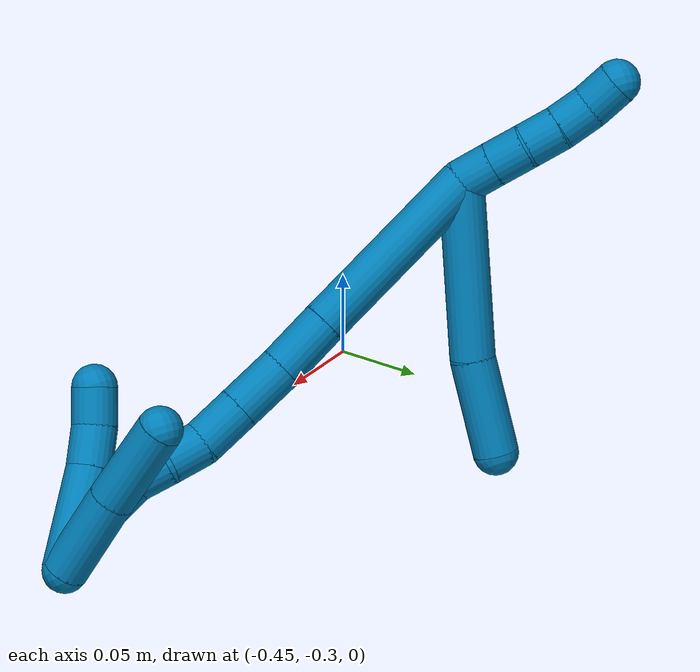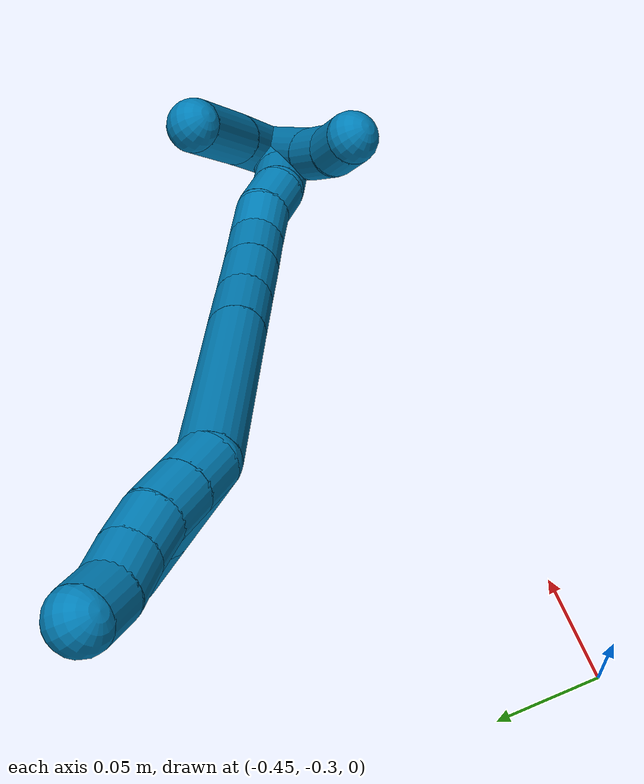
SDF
<sdf version="1.7">
 <world name="default">
  <model name="9">
   <static>0</static>
   <link name="9">
    <collision name="collision-cylinder-e_1_2_8">
     <pose>-0.005235 -0.017994 -0.044416 2.75669 -0.108809 -0.545027</pose>
     <geometry><cylinder><radius>0.0125</radius><length>0.096416</length></cylinder></geometry>
     <surface>
      <friction><ode><mu>1.16</mu><mu2>1.16</mu2><slip1>0</slip1><slip2>0</slip2></ode></friction>
      <contact><ode><kp>1e+06</kp><kd>1</kd><max_vel>0</max_vel><min_depth>0.001</min_depth></ode></contact>
     </surface>
    </collision>
    <visual name="visual-cylinder-e_1_2_8">
     <pose>-0.005235 -0.017994 -0.044416 2.75669 -0.108809 -0.545027</pose>
     <geometry><cylinder><radius>0.0125</radius><length>0.096416</length></cylinder></geometry>
     <material><ambient>0 0.490196 0.709804 1</ambient></material>
    </visual>
    <collision name="collision-cylinder-e_2_8_6">
     <pose>-0.016002 -0.042215 -0.114297 2.90174 -0.20795 -1.42735</pose>
     <geometry><cylinder><radius>0.0125</radius><length>0.053584</length></cylinder></geometry>
     <surface>
      <friction><ode><mu>1.16</mu><mu2>1.16</mu2><slip1>0</slip1><slip2>0</slip2></ode></friction>
      <contact><ode><kp>1e+06</kp><kd>1</kd><max_vel>0</max_vel><min_depth>0.001</min_depth></ode></contact>
     </surface>
    </collision>
    <visual name="visual-cylinder-e_2_8_6">
     <pose>-0.016002 -0.042215 -0.114297 2.90174 -0.20795 -1.42735</pose>
     <geometry><cylinder><radius>0.0125</radius><length>0.053584</length></cylinder></geometry>
     <material><ambient>0 0.490196 0.709804 1</ambient></material>
    </visual>
    <collision name="collision-cylinder-e_1_2_9">
     <pose>-0.004003 0.009009 0.001678 -1.38668 -0.411853 0.343733</pose>
     <geometry><cylinder><radius>0.0125</radius><length>0.02</length></cylinder></geometry>
     <surface>
      <friction><ode><mu>1.16</mu><mu2>1.16</mu2><slip1>0</slip1><slip2>0</slip2></ode></friction>
      <contact><ode><kp>1e+06</kp><kd>1</kd><max_vel>0</max_vel><min_depth>0.001</min_depth></ode></contact>
     </surface>
    </collision>
    <visual name="visual-cylinder-e_1_2_9">
     <pose>-0.004003 0.009009 0.001678 -1.38668 -0.411853 0.343733</pose>
     <geometry><cylinder><radius>0.0125</radius><length>0.02</length></cylinder></geometry>
     <material><ambient>0 0.490196 0.709804 1</ambient></material>
    </visual>
    <collision name="collision-cylinder-e_2_9_10">
     <pose>-0.012019 0.027043 0.004922 -1.39893 -0.412893 0.348836</pose>
     <geometry><cylinder><radius>0.0125</radius><length>0.02</length></cylinder></geometry>
     <surface>
      <friction><ode><mu>1.16</mu><mu2>1.16</mu2><slip1>0</slip1><slip2>0</slip2></ode></friction>
      <contact><ode><kp>1e+06</kp><kd>1</kd><max_vel>0</max_vel><min_depth>0.001</min_depth></ode></contact>
     </surface>
    </collision>
    <visual name="visual-cylinder-e_2_9_10">
     <pose>-0.012019 0.027043 0.004922 -1.39893 -0.412893 0.348836</pose>
     <geometry><cylinder><radius>0.0125</radius><length>0.02</length></cylinder></geometry>
     <material><ambient>0 0.490196 0.709804 1</ambient></material>
    </visual>
    <collision name="collision-cylinder-e_3_10_11">
     <pose>-0.021234 0.044406 0.008331 -1.35334 -0.547216 0.443402</pose>
     <geometry><cylinder><radius>0.0125</radius><length>0.02</length></cylinder></geometry>
     <surface>
      <friction><ode><mu>1.16</mu><mu2>1.16</mu2><slip1>0</slip1><slip2>0</slip2></ode></friction>
      <contact><ode><kp>1e+06</kp><kd>1</kd><max_vel>0</max_vel><min_depth>0.001</min_depth></ode></contact>
     </surface>
    </collision>
    <visual name="visual-cylinder-e_3_10_11">
     <pose>-0.021234 0.044406 0.008331 -1.35334 -0.547216 0.443402</pose>
     <geometry><cylinder><radius>0.0125</radius><length>0.02</length></cylinder></geometry>
     <material><ambient>0 0.490196 0.709804 1</ambient></material>
    </visual>
    <collision name="collision-cylinder-e_4_11_12">
     <pose>-0.031662 0.060773 0.013045 -1.22729 -0.54968 0.392122</pose>
     <geometry><cylinder><radius>0.0125</radius><length>0.02</length></cylinder></geometry>
     <surface>
      <friction><ode><mu>1.16</mu><mu2>1.16</mu2><slip1>0</slip1><slip2>0</slip2></ode></friction>
      <contact><ode><kp>1e+06</kp><kd>1</kd><max_vel>0</max_vel><min_depth>0.001</min_depth></ode></contact>
     </surface>
    </collision>
    <visual name="visual-cylinder-e_4_11_12">
     <pose>-0.031662 0.060773 0.013045 -1.22729 -0.54968 0.392122</pose>
     <geometry><cylinder><radius>0.0125</radius><length>0.02</length></cylinder></geometry>
     <material><ambient>0 0.490196 0.709804 1</ambient></material>
    </visual>
    <collision name="collision-cylinder-e_5_12_5">
     <pose>-0.039839 0.077679 0.01945 -1.19197 -0.299733 0.20412</pose>
     <geometry><cylinder><radius>0.0125</radius><length>0.02</length></cylinder></geometry>
     <surface>
      <friction><ode><mu>1.16</mu><mu2>1.16</mu2><slip1>0</slip1><slip2>0</slip2></ode></friction>
      <contact><ode><kp>1e+06</kp><kd>1</kd><max_vel>0</max_vel><min_depth>0.001</min_depth></ode></contact>
     </surface>
    </collision>
    <visual name="visual-cylinder-e_5_12_5">
     <pose>-0.039839 0.077679 0.01945 -1.19197 -0.299733 0.20412</pose>
     <geometry><cylinder><radius>0.0125</radius><length>0.02</length></cylinder></geometry>
     <material><ambient>0 0.490196 0.709804 1</ambient></material>
    </visual>
    <collision name="collision-cylinder-e_1_2_13">
     <pose>0.028412 -0.037039 -0.024764 2.16013 0.567668 0.999438</pose>
     <geometry><cylinder><radius>0.0125</radius><length>0.105686</length></cylinder></geometry>
     <surface>
      <friction><ode><mu>1.16</mu><mu2>1.16</mu2><slip1>0</slip1><slip2>0</slip2></ode></friction>
      <contact><ode><kp>1e+06</kp><kd>1</kd><max_vel>0</max_vel><min_depth>0.001</min_depth></ode></contact>
     </surface>
    </collision>
    <visual name="visual-cylinder-e_1_2_13">
     <pose>0.028412 -0.037039 -0.024764 2.16013 0.567668 0.999438</pose>
     <geometry><cylinder><radius>0.0125</radius><length>0.105686</length></cylinder></geometry>
     <material><ambient>0 0.490196 0.709804 1</ambient></material>
    </visual>
    <collision name="collision-cylinder-e_2_13_14">
     <pose>0.065544 -0.085787 -0.057523 2.1699 0.551427 0.983698</pose>
     <geometry><cylinder><radius>0.0125</radius><length>0.03329</length></cylinder></geometry>
     <surface>
      <friction><ode><mu>1.16</mu><mu2>1.16</mu2><slip1>0</slip1><slip2>0</slip2></ode></friction>
      <contact><ode><kp>1e+06</kp><kd>1</kd><max_vel>0</max_vel><min_depth>0.001</min_depth></ode></contact>
     </surface>
    </collision>
    <visual name="visual-cylinder-e_2_13_14">
     <pose>0.065544 -0.085787 -0.057523 2.1699 0.551427 0.983698</pose>
     <geometry><cylinder><radius>0.0125</radius><length>0.03329</length></cylinder></geometry>
     <material><ambient>0 0.490196 0.709804 1</ambient></material>
    </visual>
    <collision name="collision-cylinder-e_3_14_15">
     <pose>0.083051 -0.10847 -0.072322 2.12584 0.597493 1.01077</pose>
     <geometry><cylinder><radius>0.0125</radius><length>0.031236</length></cylinder></geometry>
     <surface>
      <friction><ode><mu>1.16</mu><mu2>1.16</mu2><slip1>0</slip1><slip2>0</slip2></ode></friction>
      <contact><ode><kp>1e+06</kp><kd>1</kd><max_vel>0</max_vel><min_depth>0.001</min_depth></ode></contact>
     </surface>
    </collision>
    <visual name="visual-cylinder-e_3_14_15">
     <pose>0.083051 -0.10847 -0.072322 2.12584 0.597493 1.01077</pose>
     <geometry><cylinder><radius>0.0125</radius><length>0.031236</length></cylinder></geometry>
     <material><ambient>0 0.490196 0.709804 1</ambient></material>
    </visual>
    <collision name="collision-cylinder-e_4_15_16">
     <pose>0.09966 -0.128888 -0.085038 2.13003 0.612111 1.03696</pose>
     <geometry><cylinder><radius>0.0125</radius><length>0.027228</length></cylinder></geometry>
     <surface>
      <friction><ode><mu>1.16</mu><mu2>1.16</mu2><slip1>0</slip1><slip2>0</slip2></ode></friction>
      <contact><ode><kp>1e+06</kp><kd>1</kd><max_vel>0</max_vel><min_depth>0.001</min_depth></ode></contact>
     </surface>
    </collision>
    <visual name="visual-cylinder-e_4_15_16">
     <pose>0.09966 -0.128888 -0.085038 2.13003 0.612111 1.03696</pose>
     <geometry><cylinder><radius>0.0125</radius><length>0.027228</length></cylinder></geometry>
     <material><ambient>0 0.490196 0.709804 1</ambient></material>
    </visual>
    <collision name="collision-cylinder-e_5_16_17">
     <pose>0.115153 -0.145351 -0.093157 1.87553 0.806298 1.05306</pose>
     <geometry><cylinder><radius>0.0125</radius><length>0.021257</length></cylinder></geometry>
     <surface>
      <friction><ode><mu>1.16</mu><mu2>1.16</mu2><slip1>0</slip1><slip2>0</slip2></ode></friction>
      <contact><ode><kp>1e+06</kp><kd>1</kd><max_vel>0</max_vel><min_depth>0.001</min_depth></ode></contact>
     </surface>
    </collision>
    <visual name="visual-cylinder-e_5_16_17">
     <pose>0.115153 -0.145351 -0.093157 1.87553 0.806298 1.05306</pose>
     <geometry><cylinder><radius>0.0125</radius><length>0.021257</length></cylinder></geometry>
     <material><ambient>0 0.490196 0.709804 1</ambient></material>
    </visual>
    <collision name="collision-cylinder-e_6_17_18">
     <pose>0.128343 -0.160813 -0.097077 1.77092 0.569688 0.687855</pose>
     <geometry><cylinder><radius>0.0125</radius><length>0.020465</length></cylinder></geometry>
     <surface>
      <friction><ode><mu>1.16</mu><mu2>1.16</mu2><slip1>0</slip1><slip2>0</slip2></ode></friction>
      <contact><ode><kp>1e+06</kp><kd>1</kd><max_vel>0</max_vel><min_depth>0.001</min_depth></ode></contact>
     </surface>
    </collision>
    <visual name="visual-cylinder-e_6_17_18">
     <pose>0.128343 -0.160813 -0.097077 1.77092 0.569688 0.687855</pose>
     <geometry><cylinder><radius>0.0125</radius><length>0.020465</length></cylinder></geometry>
     <material><ambient>0 0.490196 0.709804 1</ambient></material>
    </visual>
    <collision name="collision-cylinder-e_7_18_19">
     <pose>0.139228 -0.176369 -0.103365 2.14251 0.565417 0.978329</pose>
     <geometry><cylinder><radius>0.0125</radius><length>0.02003</length></cylinder></geometry>
     <surface>
      <friction><ode><mu>1.16</mu><mu2>1.16</mu2><slip1>0</slip1><slip2>0</slip2></ode></friction>
      <contact><ode><kp>1e+06</kp><kd>1</kd><max_vel>0</max_vel><min_depth>0.001</min_depth></ode></contact>
     </surface>
    </collision>
    <visual name="visual-cylinder-e_7_18_19">
     <pose>0.139228 -0.176369 -0.103365 2.14251 0.565417 0.978329</pose>
     <geometry><cylinder><radius>0.0125</radius><length>0.02003</length></cylinder></geometry>
     <material><ambient>0 0.490196 0.709804 1</ambient></material>
    </visual>
    <collision name="collision-cylinder-e_8_19_20">
     <pose>0.150825 -0.189465 -0.113643 2.33203 0.645961 1.32635</pose>
     <geometry><cylinder><radius>0.0125</radius><length>0.020703</length></cylinder></geometry>
     <surface>
      <friction><ode><mu>1.16</mu><mu2>1.16</mu2><slip1>0</slip1><slip2>0</slip2></ode></friction>
      <contact><ode><kp>1e+06</kp><kd>1</kd><max_vel>0</max_vel><min_depth>0.001</min_depth></ode></contact>
     </surface>
    </collision>
    <visual name="visual-cylinder-e_8_19_20">
     <pose>0.150825 -0.189465 -0.113643 2.33203 0.645961 1.32635</pose>
     <geometry><cylinder><radius>0.0125</radius><length>0.020703</length></cylinder></geometry>
     <material><ambient>0 0.490196 0.709804 1</ambient></material>
    </visual>
    <collision name="collision-cylinder-e_9_20_1">
     <pose>0.162216 -0.200189 -0.126553 2.55992 0.538989 1.49054</pose>
     <geometry><cylinder><radius>0.0125</radius><length>0.020105</length></cylinder></geometry>
     <surface>
      <friction><ode><mu>1.16</mu><mu2>1.16</mu2><slip1>0</slip1><slip2>0</slip2></ode></friction>
      <contact><ode><kp>1e+06</kp><kd>1</kd><max_vel>0</max_vel><min_depth>0.001</min_depth></ode></contact>
     </surface>
    </collision>
    <visual name="visual-cylinder-e_9_20_1">
     <pose>0.162216 -0.200189 -0.126553 2.55992 0.538989 1.49054</pose>
     <geometry><cylinder><radius>0.0125</radius><length>0.020105</length></cylinder></geometry>
     <material><ambient>0 0.490196 0.709804 1</ambient></material>
    </visual>
    <collision name="collision-cylinder-e_1_1_21">
     <pose>0.166222 -0.183499 -0.120802 -1.02689 -0.04603 0.025959</pose>
     <geometry><cylinder><radius>0.0125</radius><length>0.050141</length></cylinder></geometry>
     <surface>
      <friction><ode><mu>1.16</mu><mu2>1.16</mu2><slip1>0</slip1><slip2>0</slip2></ode></friction>
      <contact><ode><kp>1e+06</kp><kd>1</kd><max_vel>0</max_vel><min_depth>0.001</min_depth></ode></contact>
     </surface>
    </collision>
    <visual name="visual-cylinder-e_1_1_21">
     <pose>0.166222 -0.183499 -0.120802 -1.02689 -0.04603 0.025959</pose>
     <geometry><cylinder><radius>0.0125</radius><length>0.050141</length></cylinder></geometry>
     <material><ambient>0 0.490196 0.709804 1</ambient></material>
    </visual>
    <collision name="collision-cylinder-e_2_21_4">
     <pose>0.1641 -0.140324 -0.095689 -1.06116 -0.038867 0.022805</pose>
     <geometry><cylinder><radius>0.0125</radius><length>0.049859</length></cylinder></geometry>
     <surface>
      <friction><ode><mu>1.16</mu><mu2>1.16</mu2><slip1>0</slip1><slip2>0</slip2></ode></friction>
      <contact><ode><kp>1e+06</kp><kd>1</kd><max_vel>0</max_vel><min_depth>0.001</min_depth></ode></contact>
     </surface>
    </collision>
    <visual name="visual-cylinder-e_2_21_4">
     <pose>0.1641 -0.140324 -0.095689 -1.06116 -0.038867 0.022805</pose>
     <geometry><cylinder><radius>0.0125</radius><length>0.049859</length></cylinder></geometry>
     <material><ambient>0 0.490196 0.709804 1</ambient></material>
    </visual>
    <collision name="collision-cylinder-e_1_1_22">
     <pose>0.156492 -0.195567 -0.109756 -0.371858 -0.399648 0.076154</pose>
     <geometry><cylinder><radius>0.0125</radius><length>0.055942</length></cylinder></geometry>
     <surface>
      <friction><ode><mu>1.16</mu><mu2>1.16</mu2><slip1>0</slip1><slip2>0</slip2></ode></friction>
      <contact><ode><kp>1e+06</kp><kd>1</kd><max_vel>0</max_vel><min_depth>0.001</min_depth></ode></contact>
     </surface>
    </collision>
    <visual name="visual-cylinder-e_1_1_22">
     <pose>0.156492 -0.195567 -0.109756 -0.371858 -0.399648 0.076154</pose>
     <geometry><cylinder><radius>0.0125</radius><length>0.055942</length></cylinder></geometry>
     <material><ambient>0 0.490196 0.709804 1</ambient></material>
    </visual>
    <collision name="collision-cylinder-e_2_22_23">
     <pose>0.142038 -0.182841 -0.075241 -0.309808 -0.312966 0.049264</pose>
     <geometry><cylinder><radius>0.0125</radius><length>0.023195</length></cylinder></geometry>
     <surface>
      <friction><ode><mu>1.16</mu><mu2>1.16</mu2><slip1>0</slip1><slip2>0</slip2></ode></friction>
      <contact><ode><kp>1e+06</kp><kd>1</kd><max_vel>0</max_vel><min_depth>0.001</min_depth></ode></contact>
     </surface>
    </collision>
    <visual name="visual-cylinder-e_2_22_23">
     <pose>0.142038 -0.182841 -0.075241 -0.309808 -0.312966 0.049264</pose>
     <geometry><cylinder><radius>0.0125</radius><length>0.023195</length></cylinder></geometry>
     <material><ambient>0 0.490196 0.709804 1</ambient></material>
    </visual>
    <collision name="collision-cylinder-e_3_23_3">
     <pose>0.137425 -0.176268 -0.054861 -0.31428 -0.100128 0.015878</pose>
     <geometry><cylinder><radius>0.0125</radius><length>0.020863</length></cylinder></geometry>
     <surface>
      <friction><ode><mu>1.16</mu><mu2>1.16</mu2><slip1>0</slip1><slip2>0</slip2></ode></friction>
      <contact><ode><kp>1e+06</kp><kd>1</kd><max_vel>0</max_vel><min_depth>0.001</min_depth></ode></contact>
     </surface>
    </collision>
    <visual name="visual-cylinder-e_3_23_3">
     <pose>0.137425 -0.176268 -0.054861 -0.31428 -0.100128 0.015878</pose>
     <geometry><cylinder><radius>0.0125</radius><length>0.020863</length></cylinder></geometry>
     <material><ambient>0 0.490196 0.709804 1</ambient></material>
    </visual>
    <collision name="collision-sphere-3">
     <pose>0.136382 -0.17306 -0.044991 0 -0 0</pose>
     <geometry><sphere><radius>0.0125</radius></sphere></geometry>
     <surface>
      <friction><ode><mu>1.16</mu><mu2>1.16</mu2><slip1>0</slip1><slip2>0</slip2></ode></friction>
      <contact><ode><kp>1e+06</kp><kd>1</kd><max_vel>0</max_vel><min_depth>0.001</min_depth></ode></contact>
     </surface>
    </collision>
    <visual name="visual-sphere-3">
     <pose>0.136382 -0.17306 -0.044991 0 -0 0</pose>
     <geometry><sphere><radius>0.0125</radius></sphere></geometry>
     <material><ambient>0 0.490196 0.709804 1</ambient></material>
    </visual>
    <collision name="collision-sphere-23">
     <pose>0.138467 -0.179477 -0.064732 0 -0 0</pose>
     <geometry><sphere><radius>0.0125</radius></sphere></geometry>
     <surface>
      <friction><ode><mu>1.16</mu><mu2>1.16</mu2><slip1>0</slip1><slip2>0</slip2></ode></friction>
      <contact><ode><kp>1e+06</kp><kd>1</kd><max_vel>0</max_vel><min_depth>0.001</min_depth></ode></contact>
     </surface>
    </collision>
    <visual name="visual-sphere-23">
     <pose>0.138467 -0.179477 -0.064732 0 -0 0</pose>
     <geometry><sphere><radius>0.0125</radius></sphere></geometry>
     <material><ambient>0 0.490196 0.709804 1</ambient></material>
    </visual>
    <collision name="collision-sphere-22">
     <pose>0.145609 -0.186205 -0.08575 0 -0 0</pose>
     <geometry><sphere><radius>0.0125</radius></sphere></geometry>
     <surface>
      <friction><ode><mu>1.16</mu><mu2>1.16</mu2><slip1>0</slip1><slip2>0</slip2></ode></friction>
      <contact><ode><kp>1e+06</kp><kd>1</kd><max_vel>0</max_vel><min_depth>0.001</min_depth></ode></contact>
     </surface>
    </collision>
    <visual name="visual-sphere-22">
     <pose>0.145609 -0.186205 -0.08575 0 -0 0</pose>
     <geometry><sphere><radius>0.0125</radius></sphere></geometry>
     <material><ambient>0 0.490196 0.709804 1</ambient></material>
    </visual>
    <collision name="collision-sphere-4">
     <pose>0.163131 -0.118579 -0.083536 0 -0 0</pose>
     <geometry><sphere><radius>0.0125</radius></sphere></geometry>
     <surface>
      <friction><ode><mu>1.16</mu><mu2>1.16</mu2><slip1>0</slip1><slip2>0</slip2></ode></friction>
      <contact><ode><kp>1e+06</kp><kd>1</kd><max_vel>0</max_vel><min_depth>0.001</min_depth></ode></contact>
     </surface>
    </collision>
    <visual name="visual-sphere-4">
     <pose>0.163131 -0.118579 -0.083536 0 -0 0</pose>
     <geometry><sphere><radius>0.0125</radius></sphere></geometry>
     <material><ambient>0 0.490196 0.709804 1</ambient></material>
    </visual>
    <collision name="collision-sphere-21">
     <pose>0.165068 -0.162069 -0.107842 0 -0 0</pose>
     <geometry><sphere><radius>0.0125</radius></sphere></geometry>
     <surface>
      <friction><ode><mu>1.16</mu><mu2>1.16</mu2><slip1>0</slip1><slip2>0</slip2></ode></friction>
      <contact><ode><kp>1e+06</kp><kd>1</kd><max_vel>0</max_vel><min_depth>0.001</min_depth></ode></contact>
     </surface>
    </collision>
    <visual name="visual-sphere-21">
     <pose>0.165068 -0.162069 -0.107842 0 -0 0</pose>
     <geometry><sphere><radius>0.0125</radius></sphere></geometry>
     <material><ambient>0 0.490196 0.709804 1</ambient></material>
    </visual>
    <collision name="collision-sphere-1">
     <pose>0.167375 -0.204929 -0.133761 0 -0 0</pose>
     <geometry><sphere><radius>0.0125</radius></sphere></geometry>
     <surface>
      <friction><ode><mu>1.16</mu><mu2>1.16</mu2><slip1>0</slip1><slip2>0</slip2></ode></friction>
      <contact><ode><kp>1e+06</kp><kd>1</kd><max_vel>0</max_vel><min_depth>0.001</min_depth></ode></contact>
     </surface>
    </collision>
    <visual name="visual-sphere-1">
     <pose>0.167375 -0.204929 -0.133761 0 -0 0</pose>
     <geometry><sphere><radius>0.0125</radius></sphere></geometry>
     <material><ambient>0 0.490196 0.709804 1</ambient></material>
    </visual>
    <collision name="collision-sphere-11">
     <pose>-0.026438 0.052745 0.010173 0 -0 0</pose>
     <geometry><sphere><radius>0.0125</radius></sphere></geometry>
     <surface>
      <friction><ode><mu>1.16</mu><mu2>1.16</mu2><slip1>0</slip1><slip2>0</slip2></ode></friction>
      <contact><ode><kp>1e+06</kp><kd>1</kd><max_vel>0</max_vel><min_depth>0.001</min_depth></ode></contact>
     </surface>
    </collision>
    <visual name="visual-sphere-11">
     <pose>-0.026438 0.052745 0.010173 0 -0 0</pose>
     <geometry><sphere><radius>0.0125</radius></sphere></geometry>
     <material><ambient>0 0.490196 0.709804 1</ambient></material>
    </visual>
    <collision name="collision-sphere-10">
     <pose>-0.016031 0.036067 0.006488 0 -0 0</pose>
     <geometry><sphere><radius>0.0125</radius></sphere></geometry>
     <surface>
      <friction><ode><mu>1.16</mu><mu2>1.16</mu2><slip1>0</slip1><slip2>0</slip2></ode></friction>
      <contact><ode><kp>1e+06</kp><kd>1</kd><max_vel>0</max_vel><min_depth>0.001</min_depth></ode></contact>
     </surface>
    </collision>
    <visual name="visual-sphere-10">
     <pose>-0.016031 0.036067 0.006488 0 -0 0</pose>
     <geometry><sphere><radius>0.0125</radius></sphere></geometry>
     <material><ambient>0 0.490196 0.709804 1</ambient></material>
    </visual>
    <collision name="collision-sphere-6">
     <pose>-0.021533 -0.048443 -0.139762 0 -0 0</pose>
     <geometry><sphere><radius>0.0125</radius></sphere></geometry>
     <surface>
      <friction><ode><mu>1.16</mu><mu2>1.16</mu2><slip1>0</slip1><slip2>0</slip2></ode></friction>
      <contact><ode><kp>1e+06</kp><kd>1</kd><max_vel>0</max_vel><min_depth>0.001</min_depth></ode></contact>
     </surface>
    </collision>
    <visual name="visual-sphere-6">
     <pose>-0.021533 -0.048443 -0.139762 0 -0 0</pose>
     <geometry><sphere><radius>0.0125</radius></sphere></geometry>
     <material><ambient>0 0.490196 0.709804 1</ambient></material>
    </visual>
    <collision name="collision-sphere-9">
     <pose>-0.008006 0.018018 0.003355 0 -0 0</pose>
     <geometry><sphere><radius>0.0125</radius></sphere></geometry>
     <surface>
      <friction><ode><mu>1.16</mu><mu2>1.16</mu2><slip1>0</slip1><slip2>0</slip2></ode></friction>
      <contact><ode><kp>1e+06</kp><kd>1</kd><max_vel>0</max_vel><min_depth>0.001</min_depth></ode></contact>
     </surface>
    </collision>
    <visual name="visual-sphere-9">
     <pose>-0.008006 0.018018 0.003355 0 -0 0</pose>
     <geometry><sphere><radius>0.0125</radius></sphere></geometry>
     <material><ambient>0 0.490196 0.709804 1</ambient></material>
    </visual>
    <collision name="collision-sphere-2">
     <geometry><sphere><radius>0.0125</radius></sphere></geometry>
     <surface>
      <friction><ode><mu>1.16</mu><mu2>1.16</mu2><slip1>0</slip1><slip2>0</slip2></ode></friction>
      <contact><ode><kp>1e+06</kp><kd>1</kd><max_vel>0</max_vel><min_depth>0.001</min_depth></ode></contact>
     </surface>
    </collision>
    <visual name="visual-sphere-2">
     <geometry><sphere><radius>0.0125</radius></sphere></geometry>
     <material><ambient>0 0.490196 0.709804 1</ambient></material>
    </visual>
    <collision name="collision-sphere-19">
     <pose>0.144594 -0.183481 -0.107941 0 -0 0</pose>
     <geometry><sphere><radius>0.0125</radius></sphere></geometry>
     <surface>
      <friction><ode><mu>1.16</mu><mu2>1.16</mu2><slip1>0</slip1><slip2>0</slip2></ode></friction>
      <contact><ode><kp>1e+06</kp><kd>1</kd><max_vel>0</max_vel><min_depth>0.001</min_depth></ode></contact>
     </surface>
    </collision>
    <visual name="visual-sphere-19">
     <pose>0.144594 -0.183481 -0.107941 0 -0 0</pose>
     <geometry><sphere><radius>0.0125</radius></sphere></geometry>
     <material><ambient>0 0.490196 0.709804 1</ambient></material>
    </visual>
    <collision name="collision-sphere-8">
     <pose>-0.01047 -0.035987 -0.088833 0 -0 0</pose>
     <geometry><sphere><radius>0.0125</radius></sphere></geometry>
     <surface>
      <friction><ode><mu>1.16</mu><mu2>1.16</mu2><slip1>0</slip1><slip2>0</slip2></ode></friction>
      <contact><ode><kp>1e+06</kp><kd>1</kd><max_vel>0</max_vel><min_depth>0.001</min_depth></ode></contact>
     </surface>
    </collision>
    <visual name="visual-sphere-8">
     <pose>-0.01047 -0.035987 -0.088833 0 -0 0</pose>
     <geometry><sphere><radius>0.0125</radius></sphere></geometry>
     <material><ambient>0 0.490196 0.709804 1</ambient></material>
    </visual>
    <collision name="collision-sphere-12">
     <pose>-0.036886 0.068802 0.015917 0 -0 0</pose>
     <geometry><sphere><radius>0.0125</radius></sphere></geometry>
     <surface>
      <friction><ode><mu>1.16</mu><mu2>1.16</mu2><slip1>0</slip1><slip2>0</slip2></ode></friction>
      <contact><ode><kp>1e+06</kp><kd>1</kd><max_vel>0</max_vel><min_depth>0.001</min_depth></ode></contact>
     </surface>
    </collision>
    <visual name="visual-sphere-12">
     <pose>-0.036886 0.068802 0.015917 0 -0 0</pose>
     <geometry><sphere><radius>0.0125</radius></sphere></geometry>
     <material><ambient>0 0.490196 0.709804 1</ambient></material>
    </visual>
    <collision name="collision-sphere-5">
     <pose>-0.042791 0.086556 0.022984 0 -0 0</pose>
     <geometry><sphere><radius>0.0125</radius></sphere></geometry>
     <surface>
      <friction><ode><mu>1.16</mu><mu2>1.16</mu2><slip1>0</slip1><slip2>0</slip2></ode></friction>
      <contact><ode><kp>1e+06</kp><kd>1</kd><max_vel>0</max_vel><min_depth>0.001</min_depth></ode></contact>
     </surface>
    </collision>
    <visual name="visual-sphere-5">
     <pose>-0.042791 0.086556 0.022984 0 -0 0</pose>
     <geometry><sphere><radius>0.0125</radius></sphere></geometry>
     <material><ambient>0 0.490196 0.709804 1</ambient></material>
    </visual>
    <collision name="collision-sphere-13">
     <pose>0.056824 -0.074078 -0.049528 0 -0 0</pose>
     <geometry><sphere><radius>0.0125</radius></sphere></geometry>
     <surface>
      <friction><ode><mu>1.16</mu><mu2>1.16</mu2><slip1>0</slip1><slip2>0</slip2></ode></friction>
      <contact><ode><kp>1e+06</kp><kd>1</kd><max_vel>0</max_vel><min_depth>0.001</min_depth></ode></contact>
     </surface>
    </collision>
    <visual name="visual-sphere-13">
     <pose>0.056824 -0.074078 -0.049528 0 -0 0</pose>
     <geometry><sphere><radius>0.0125</radius></sphere></geometry>
     <material><ambient>0 0.490196 0.709804 1</ambient></material>
    </visual>
    <collision name="collision-sphere-14">
     <pose>0.074265 -0.097496 -0.065518 0 -0 0</pose>
     <geometry><sphere><radius>0.0125</radius></sphere></geometry>
     <surface>
      <friction><ode><mu>1.16</mu><mu2>1.16</mu2><slip1>0</slip1><slip2>0</slip2></ode></friction>
      <contact><ode><kp>1e+06</kp><kd>1</kd><max_vel>0</max_vel><min_depth>0.001</min_depth></ode></contact>
     </surface>
    </collision>
    <visual name="visual-sphere-14">
     <pose>0.074265 -0.097496 -0.065518 0 -0 0</pose>
     <geometry><sphere><radius>0.0125</radius></sphere></geometry>
     <material><ambient>0 0.490196 0.709804 1</ambient></material>
    </visual>
    <collision name="collision-sphere-15">
     <pose>0.091837 -0.119443 -0.079127 0 -0 0</pose>
     <geometry><sphere><radius>0.0125</radius></sphere></geometry>
     <surface>
      <friction><ode><mu>1.16</mu><mu2>1.16</mu2><slip1>0</slip1><slip2>0</slip2></ode></friction>
      <contact><ode><kp>1e+06</kp><kd>1</kd><max_vel>0</max_vel><min_depth>0.001</min_depth></ode></contact>
     </surface>
    </collision>
    <visual name="visual-sphere-15">
     <pose>0.091837 -0.119443 -0.079127 0 -0 0</pose>
     <geometry><sphere><radius>0.0125</radius></sphere></geometry>
     <material><ambient>0 0.490196 0.709804 1</ambient></material>
    </visual>
    <collision name="collision-sphere-16">
     <pose>0.107482 -0.138333 -0.09095 0 -0 0</pose>
     <geometry><sphere><radius>0.0125</radius></sphere></geometry>
     <surface>
      <friction><ode><mu>1.16</mu><mu2>1.16</mu2><slip1>0</slip1><slip2>0</slip2></ode></friction>
      <contact><ode><kp>1e+06</kp><kd>1</kd><max_vel>0</max_vel><min_depth>0.001</min_depth></ode></contact>
     </surface>
    </collision>
    <visual name="visual-sphere-16">
     <pose>0.107482 -0.138333 -0.09095 0 -0 0</pose>
     <geometry><sphere><radius>0.0125</radius></sphere></geometry>
     <material><ambient>0 0.490196 0.709804 1</ambient></material>
    </visual>
    <collision name="collision-sphere-17">
     <pose>0.122824 -0.152369 -0.095364 0 -0 0</pose>
     <geometry><sphere><radius>0.0125</radius></sphere></geometry>
     <surface>
      <friction><ode><mu>1.16</mu><mu2>1.16</mu2><slip1>0</slip1><slip2>0</slip2></ode></friction>
      <contact><ode><kp>1e+06</kp><kd>1</kd><max_vel>0</max_vel><min_depth>0.001</min_depth></ode></contact>
     </surface>
    </collision>
    <visual name="visual-sphere-17">
     <pose>0.122824 -0.152369 -0.095364 0 -0 0</pose>
     <geometry><sphere><radius>0.0125</radius></sphere></geometry>
     <material><ambient>0 0.490196 0.709804 1</ambient></material>
    </visual>
    <collision name="collision-sphere-18">
     <pose>0.133863 -0.169258 -0.09879 0 -0 0</pose>
     <geometry><sphere><radius>0.0125</radius></sphere></geometry>
     <surface>
      <friction><ode><mu>1.16</mu><mu2>1.16</mu2><slip1>0</slip1><slip2>0</slip2></ode></friction>
      <contact><ode><kp>1e+06</kp><kd>1</kd><max_vel>0</max_vel><min_depth>0.001</min_depth></ode></contact>
     </surface>
    </collision>
    <visual name="visual-sphere-18">
     <pose>0.133863 -0.169258 -0.09879 0 -0 0</pose>
     <geometry><sphere><radius>0.0125</radius></sphere></geometry>
     <material><ambient>0 0.490196 0.709804 1</ambient></material>
    </visual>
    <collision name="collision-sphere-20">
     <pose>0.157056 -0.195449 -0.119345 0 -0 0</pose>
     <geometry><sphere><radius>0.0125</radius></sphere></geometry>
     <surface>
      <friction><ode><mu>1.16</mu><mu2>1.16</mu2><slip1>0</slip1><slip2>0</slip2></ode></friction>
      <contact><ode><kp>1e+06</kp><kd>1</kd><max_vel>0</max_vel><min_depth>0.001</min_depth></ode></contact>
     </surface>
    </collision>
    <visual name="visual-sphere-20">
     <pose>0.157056 -0.195449 -0.119345 0 -0 0</pose>
     <geometry><sphere><radius>0.0125</radius></sphere></geometry>
     <material><ambient>0 0.490196 0.709804 1</ambient></material>
    </visual>
    <inertial>
     <pose>0.070179 -0.088271 -0.06581 0 -0 0</pose>
     <mass>0.75</mass>
     <inertia><ixx>0.000213</ixx><ixy>0</ixy><ixz>0</ixz><iyy>1.4e-05</iyy><iyz>0</iyz><izz>3.2e-05</izz></inertia>
    </inertial>
   </link>
   <pose>-0.36104 -0.162454 0.180892 0.611289 -0.293822 -0.060382</pose>
  </model>
 </world>
</sdf>
